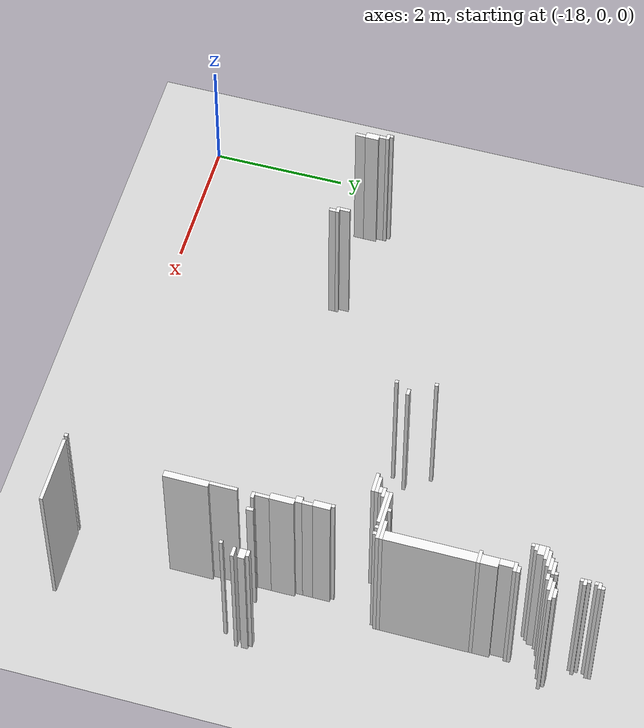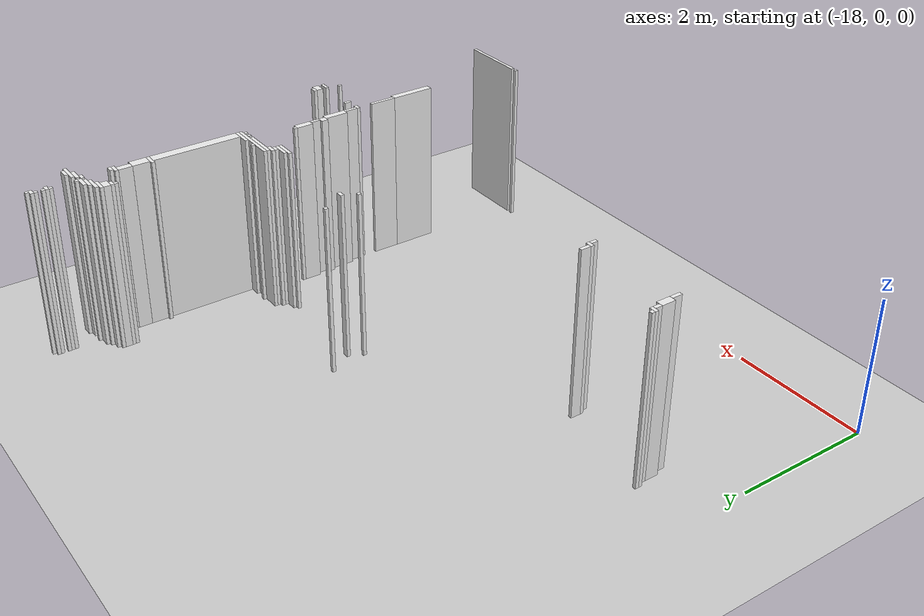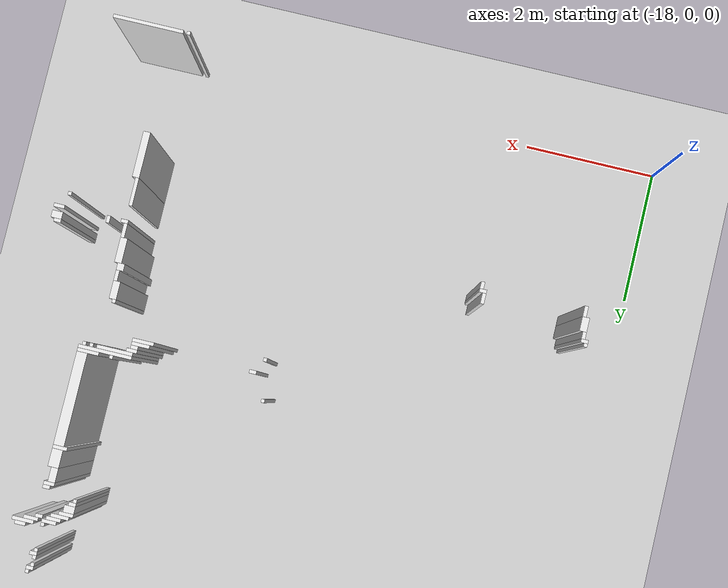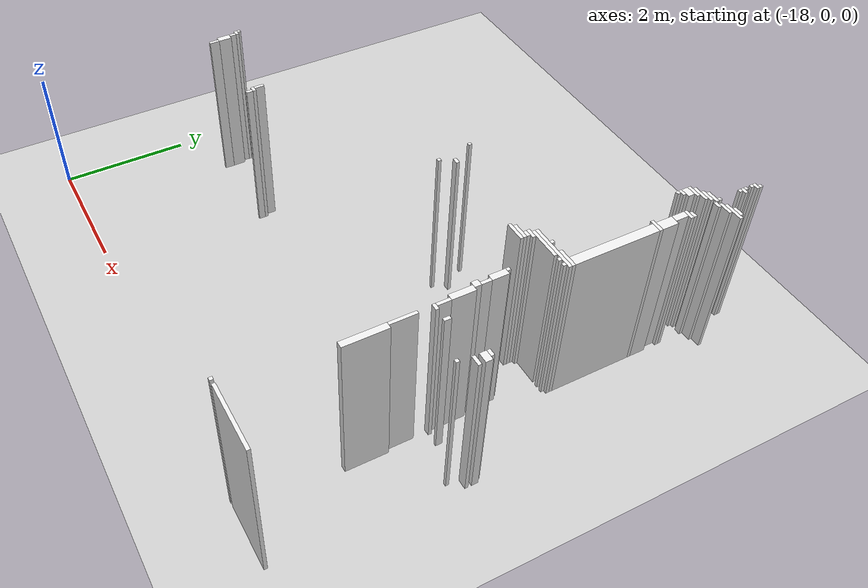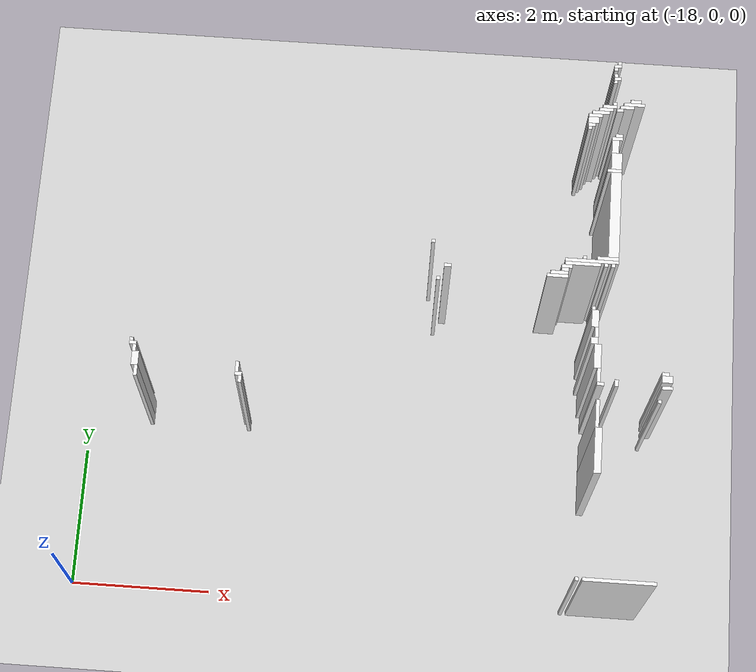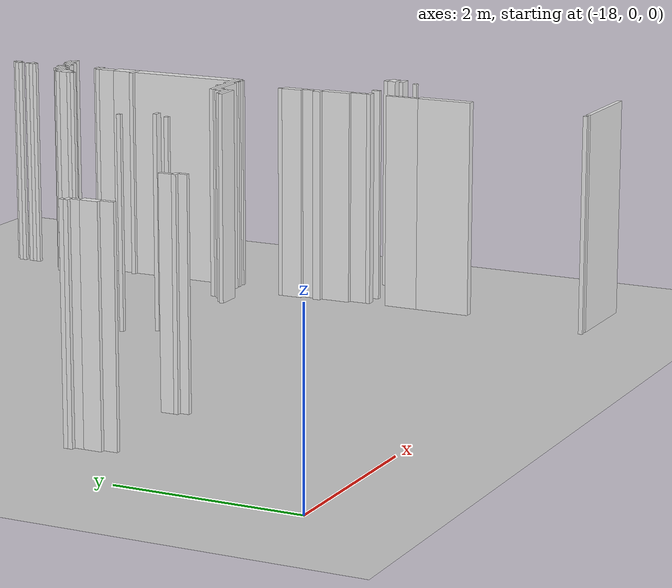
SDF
<sdf version="1.7">
 <world name="occupancy_map_world">
  <model name="ground_plane">
   <static>true</static>
   <link name="link">
    <collision name="collision">
     <geometry><plane><normal>0 0 1</normal><size>25.380000000000003 18.84</size></plane></geometry>
    </collision>
    <visual name="visual">
     <geometry><plane><normal>0 0 1</normal><size>25.380000000000003 18.84</size></plane></geometry>
     <material>
      <script><uri>file://media/materials/scripts/gazebo.material</uri><name>Gazebo/Grey</name></script>
     </material>
    </visual>
   </link>
  </model>
  <model name="wall_45">
   <static>true</static>
   <pose>-10.529 7.703 1.25 0 0 0.0</pose>
   <link name="link">
    <collision name="collision"><geometry><box><size>0.05 0.05 2.5</size></box></geometry></collision>
    <visual name="visual">
     <geometry><box><size>0.05 0.05 2.5</size></box></geometry>
     <material>
      <script><uri>file://media/materials/scripts/gazebo.material</uri><name>Gazebo/White</name></script>
     </material>
    </visual>
   </link>
  </model>
  <model name="wall_46">
   <static>true</static>
   <pose>-10.529 4.553 1.25 0 0 0.0</pose>
   <link name="link">
    <collision name="collision"><geometry><box><size>0.05 0.05 2.5</size></box></geometry></collision>
    <visual name="visual">
     <geometry><box><size>0.05 0.05 2.5</size></box></geometry>
     <material>
      <script><uri>file://media/materials/scripts/gazebo.material</uri><name>Gazebo/White</name></script>
     </material>
    </visual>
   </link>
  </model>
  <model name="wall_47">
   <static>true</static>
   <pose>-10.554000000000002 7.653 1.25 0 0 0.0</pose>
   <link name="link">
    <collision name="collision"><geometry><box><size>0.1 0.05 2.5</size></box></geometry></collision>
    <visual name="visual">
     <geometry><box><size>0.1 0.05 2.5</size></box></geometry>
     <material>
      <script><uri>file://media/materials/scripts/gazebo.material</uri><name>Gazebo/White</name></script>
     </material>
    </visual>
   </link>
  </model>
  <model name="wall_48">
   <static>true</static>
   <pose>-10.554000000000002 7.453 1.25 0 0 0.0</pose>
   <link name="link">
    <collision name="collision"><geometry><box><size>0.1 0.05 2.5</size></box></geometry></collision>
    <visual name="visual">
     <geometry><box><size>0.1 0.05 2.5</size></box></geometry>
     <material>
      <script><uri>file://media/materials/scripts/gazebo.material</uri><name>Gazebo/White</name></script>
     </material>
    </visual>
   </link>
  </model>
  <model name="wall_49">
   <static>true</static>
   <pose>-10.554000000000002 6.378000000000001 1.25 0 0 0.0</pose>
   <link name="link">
    <collision name="collision"><geometry><box><size>0.1 0.2 2.5</size></box></geometry></collision>
    <visual name="visual">
     <geometry><box><size>0.1 0.2 2.5</size></box></geometry>
     <material>
      <script><uri>file://media/materials/scripts/gazebo.material</uri><name>Gazebo/White</name></script>
     </material>
    </visual>
   </link>
  </model>
  <model name="wall_52">
   <static>true</static>
   <pose>-10.579 7.603000000000001 1.25 0 0 0.0</pose>
   <link name="link">
    <collision name="collision"><geometry><box><size>0.05 0.05 2.5</size></box></geometry></collision>
    <visual name="visual">
     <geometry><box><size>0.05 0.05 2.5</size></box></geometry>
     <material>
      <script><uri>file://media/materials/scripts/gazebo.material</uri><name>Gazebo/White</name></script>
     </material>
    </visual>
   </link>
  </model>
  <model name="wall_53">
   <static>true</static>
   <pose>-10.579 7.503000000000001 1.25 0 0 0.0</pose>
   <link name="link">
    <collision name="collision"><geometry><box><size>0.05 0.05 2.5</size></box></geometry></collision>
    <visual name="visual">
     <geometry><box><size>0.05 0.05 2.5</size></box></geometry>
     <material>
      <script><uri>file://media/materials/scripts/gazebo.material</uri><name>Gazebo/White</name></script>
     </material>
    </visual>
   </link>
  </model>
  <model name="wall_54">
   <static>true</static>
   <pose>-10.579 7.403 1.25 0 0 0.0</pose>
   <link name="link">
    <collision name="collision"><geometry><box><size>0.05 0.05 2.5</size></box></geometry></collision>
    <visual name="visual">
     <geometry><box><size>0.05 0.05 2.5</size></box></geometry>
     <material>
      <script><uri>file://media/materials/scripts/gazebo.material</uri><name>Gazebo/White</name></script>
     </material>
    </visual>
   </link>
  </model>
  <model name="wall_55">
   <static>true</static>
   <pose>-10.579 7.053 1.25 0 0 0.0</pose>
   <link name="link">
    <collision name="collision"><geometry><box><size>0.05 0.05 2.5</size></box></geometry></collision>
    <visual name="visual">
     <geometry><box><size>0.05 0.05 2.5</size></box></geometry>
     <material>
      <script><uri>file://media/materials/scripts/gazebo.material</uri><name>Gazebo/White</name></script>
     </material>
    </visual>
   </link>
  </model>
  <model name="wall_68">
   <static>true</static>
   <pose>-10.279000000000002 7.103000000000001 1.25 0 0 0.0</pose>
   <link name="link">
    <collision name="collision">
     <geometry><box><size>0.15000000000000002 0.05 2.5</size></box></geometry>
    </collision>
    <visual name="visual">
     <geometry><box><size>0.15000000000000002 0.05 2.5</size></box></geometry>
     <material>
      <script><uri>file://media/materials/scripts/gazebo.material</uri><name>Gazebo/White</name></script>
     </material>
    </visual>
   </link>
  </model>
  <model name="wall_70">
   <static>true</static>
   <pose>-10.304 7.053 1.25 0 0 0.0</pose>
   <link name="link">
    <collision name="collision">
     <geometry><box><size>0.30000000000000004 0.05 2.5</size></box></geometry>
    </collision>
    <visual name="visual">
     <geometry><box><size>0.30000000000000004 0.05 2.5</size></box></geometry>
     <material>
      <script><uri>file://media/materials/scripts/gazebo.material</uri><name>Gazebo/White</name></script>
     </material>
    </visual>
   </link>
  </model>
  <model name="wall_73">
   <static>true</static>
   <pose>-10.654 7.003000000000001 1.25 0 0 0.0</pose>
   <link name="link">
    <collision name="collision"><geometry><box><size>0.2 0.05 2.5</size></box></geometry></collision>
    <visual name="visual">
     <geometry><box><size>0.2 0.05 2.5</size></box></geometry>
     <material>
      <script><uri>file://media/materials/scripts/gazebo.material</uri><name>Gazebo/White</name></script>
     </material>
    </visual>
   </link>
  </model>
  <model name="wall_74">
   <static>true</static>
   <pose>-10.404 7.003000000000001 1.25 0 0 0.0</pose>
   <link name="link">
    <collision name="collision"><geometry><box><size>0.2 0.05 2.5</size></box></geometry></collision>
    <visual name="visual">
     <geometry><box><size>0.2 0.05 2.5</size></box></geometry>
     <material>
      <script><uri>file://media/materials/scripts/gazebo.material</uri><name>Gazebo/White</name></script>
     </material>
    </visual>
   </link>
  </model>
  <model name="wall_77">
   <static>true</static>
   <pose>-10.704 6.953 1.25 0 0 0.0</pose>
   <link name="link">
    <collision name="collision"><geometry><box><size>0.2 0.05 2.5</size></box></geometry></collision>
    <visual name="visual">
     <geometry><box><size>0.2 0.05 2.5</size></box></geometry>
     <material>
      <script><uri>file://media/materials/scripts/gazebo.material</uri><name>Gazebo/White</name></script>
     </material>
    </visual>
   </link>
  </model>
  <model name="wall_78">
   <static>true</static>
   <pose>-10.504000000000001 6.953 1.25 0 0 0.0</pose>
   <link name="link">
    <collision name="collision"><geometry><box><size>0.1 0.05 2.5</size></box></geometry></collision>
    <visual name="visual">
     <geometry><box><size>0.1 0.05 2.5</size></box></geometry>
     <material>
      <script><uri>file://media/materials/scripts/gazebo.material</uri><name>Gazebo/White</name></script>
     </material>
    </visual>
   </link>
  </model>
  <model name="wall_79">
   <static>true</static>
   <pose>-10.504000000000001 6.553 1.25 0 0 0.0</pose>
   <link name="link">
    <collision name="collision"><geometry><box><size>0.1 0.05 2.5</size></box></geometry></collision>
    <visual name="visual">
     <geometry><box><size>0.1 0.05 2.5</size></box></geometry>
     <material>
      <script><uri>file://media/materials/scripts/gazebo.material</uri><name>Gazebo/White</name></script>
     </material>
    </visual>
   </link>
  </model>
  <model name="wall_84">
   <static>true</static>
   <pose>-10.779 6.903 1.25 0 0 0.0</pose>
   <link name="link">
    <collision name="collision"><geometry><box><size>0.25 0.05 2.5</size></box></geometry></collision>
    <visual name="visual">
     <geometry><box><size>0.25 0.05 2.5</size></box></geometry>
     <material>
      <script><uri>file://media/materials/scripts/gazebo.material</uri><name>Gazebo/White</name></script>
     </material>
    </visual>
   </link>
  </model>
  <model name="wall_89">
   <static>true</static>
   <pose>-10.854000000000001 6.853000000000001 1.25 0 0 0.0</pose>
   <link name="link">
    <collision name="collision"><geometry><box><size>0.2 0.05 2.5</size></box></geometry></collision>
    <visual name="visual">
     <geometry><box><size>0.2 0.05 2.5</size></box></geometry>
     <material>
      <script><uri>file://media/materials/scripts/gazebo.material</uri><name>Gazebo/White</name></script>
     </material>
    </visual>
   </link>
  </model>
  <model name="wall_95">
   <static>true</static>
   <pose>-10.879000000000001 6.778 1.25 0 0 0.0</pose>
   <link name="link">
    <collision name="collision">
     <geometry><box><size>0.15000000000000002 0.1 2.5</size></box></geometry>
    </collision>
    <visual name="visual">
     <geometry><box><size>0.15000000000000002 0.1 2.5</size></box></geometry>
     <material>
      <script><uri>file://media/materials/scripts/gazebo.material</uri><name>Gazebo/White</name></script>
     </material>
    </visual>
   </link>
  </model>
  <model name="wall_104">
   <static>true</static>
   <pose>-10.904 6.703 1.25 0 0 0.0</pose>
   <link name="link">
    <collision name="collision"><geometry><box><size>0.1 0.05 2.5</size></box></geometry></collision>
    <visual name="visual">
     <geometry><box><size>0.1 0.05 2.5</size></box></geometry>
     <material>
      <script><uri>file://media/materials/scripts/gazebo.material</uri><name>Gazebo/White</name></script>
     </material>
    </visual>
   </link>
  </model>
  <model name="wall_105">
   <static>true</static>
   <pose>-10.929000000000002 6.653 1.25 0 0 0.0</pose>
   <link name="link">
    <collision name="collision"><geometry><box><size>0.05 0.05 2.5</size></box></geometry></collision>
    <visual name="visual">
     <geometry><box><size>0.05 0.05 2.5</size></box></geometry>
     <material>
      <script><uri>file://media/materials/scripts/gazebo.material</uri><name>Gazebo/White</name></script>
     </material>
    </visual>
   </link>
  </model>
  <model name="wall_106">
   <static>true</static>
   <pose>-10.929000000000002 4.653 1.25 0 0 0.0</pose>
   <link name="link">
    <collision name="collision"><geometry><box><size>0.05 0.05 2.5</size></box></geometry></collision>
    <visual name="visual">
     <geometry><box><size>0.05 0.05 2.5</size></box></geometry>
     <material>
      <script><uri>file://media/materials/scripts/gazebo.material</uri><name>Gazebo/White</name></script>
     </material>
    </visual>
   </link>
  </model>
  <model name="wall_112">
   <static>true</static>
   <pose>-10.529 6.503000000000001 1.25 0 0 0.0</pose>
   <link name="link">
    <collision name="collision">
     <geometry><box><size>0.15000000000000002 0.05 2.5</size></box></geometry>
    </collision>
    <visual name="visual">
     <geometry><box><size>0.15000000000000002 0.05 2.5</size></box></geometry>
     <material>
      <script><uri>file://media/materials/scripts/gazebo.material</uri><name>Gazebo/White</name></script>
     </material>
    </visual>
   </link>
  </model>
  <model name="wall_113">
   <static>true</static>
   <pose>-10.529 6.153 1.25 0 0 0.0</pose>
   <link name="link">
    <collision name="collision">
     <geometry><box><size>0.15000000000000002 0.25 2.5</size></box></geometry>
    </collision>
    <visual name="visual">
     <geometry><box><size>0.15000000000000002 0.25 2.5</size></box></geometry>
     <material>
      <script><uri>file://media/materials/scripts/gazebo.material</uri><name>Gazebo/White</name></script>
     </material>
    </visual>
   </link>
  </model>
  <model name="wall_114">
   <static>true</static>
   <pose>-10.529 5.328 1.25 0 0 0.0</pose>
   <link name="link">
    <collision name="collision">
     <geometry><box><size>0.15000000000000002 1.3 2.5</size></box></geometry>
    </collision>
    <visual name="visual">
     <geometry><box><size>0.15000000000000002 1.3 2.5</size></box></geometry>
     <material>
      <script><uri>file://media/materials/scripts/gazebo.material</uri><name>Gazebo/White</name></script>
     </material>
    </visual>
   </link>
  </model>
  <model name="wall_140">
   <static>true</static>
   <pose>-10.554000000000002 6.003000000000001 1.25 0 0 0.0</pose>
   <link name="link">
    <collision name="collision"><geometry><box><size>0.2 0.05 2.5</size></box></geometry></collision>
    <visual name="visual">
     <geometry><box><size>0.2 0.05 2.5</size></box></geometry>
     <material>
      <script><uri>file://media/materials/scripts/gazebo.material</uri><name>Gazebo/White</name></script>
     </material>
    </visual>
   </link>
  </model>
  <model name="wall_193">
   <static>true</static>
   <pose>-13.079 4.752999999999999 1.25 0 0 0.0</pose>
   <link name="link">
    <collision name="collision"><geometry><box><size>0.05 0.05 2.5</size></box></geometry></collision>
    <visual name="visual">
     <geometry><box><size>0.05 0.05 2.5</size></box></geometry>
     <material>
      <script><uri>file://media/materials/scripts/gazebo.material</uri><name>Gazebo/White</name></script>
     </material>
    </visual>
   </link>
  </model>
  <model name="wall_195">
   <static>true</static>
   <pose>-10.604000000000001 4.653 1.25 0 0 0.0</pose>
   <link name="link">
    <collision name="collision">
     <geometry><box><size>0.30000000000000004 0.05 2.5</size></box></geometry>
    </collision>
    <visual name="visual">
     <geometry><box><size>0.30000000000000004 0.05 2.5</size></box></geometry>
     <material>
      <script><uri>file://media/materials/scripts/gazebo.material</uri><name>Gazebo/White</name></script>
     </material>
    </visual>
   </link>
  </model>
  <model name="wall_196">
   <static>true</static>
   <pose>-10.829 4.603000000000001 1.25 0 0 0.0</pose>
   <link name="link">
    <collision name="collision"><geometry><box><size>0.75 0.05 2.5</size></box></geometry></collision>
    <visual name="visual">
     <geometry><box><size>0.75 0.05 2.5</size></box></geometry>
     <material>
      <script><uri>file://media/materials/scripts/gazebo.material</uri><name>Gazebo/White</name></script>
     </material>
    </visual>
   </link>
  </model>
  <model name="wall_200">
   <static>true</static>
   <pose>-10.954 4.553 1.25 0 0 0.0</pose>
   <link name="link">
    <collision name="collision"><geometry><box><size>0.5 0.05 2.5</size></box></geometry></collision>
    <visual name="visual">
     <geometry><box><size>0.5 0.05 2.5</size></box></geometry>
     <material>
      <script><uri>file://media/materials/scripts/gazebo.material</uri><name>Gazebo/White</name></script>
     </material>
    </visual>
   </link>
  </model>
  <model name="wall_201">
   <static>true</static>
   <pose>-10.629000000000001 4.553 1.25 0 0 0.0</pose>
   <link name="link">
    <collision name="collision"><geometry><box><size>0.05 0.05 2.5</size></box></geometry></collision>
    <visual name="visual">
     <geometry><box><size>0.05 0.05 2.5</size></box></geometry>
     <material>
      <script><uri>file://media/materials/scripts/gazebo.material</uri><name>Gazebo/White</name></script>
     </material>
    </visual>
   </link>
  </model>
  <model name="wall_203">
   <static>true</static>
   <pose>-11.179000000000002 4.502999999999999 1.25 0 0 0.0</pose>
   <link name="link">
    <collision name="collision">
     <geometry><box><size>0.15000000000000002 0.05 2.5</size></box></geometry>
    </collision>
    <visual name="visual">
     <geometry><box><size>0.15000000000000002 0.05 2.5</size></box></geometry>
     <material>
      <script><uri>file://media/materials/scripts/gazebo.material</uri><name>Gazebo/White</name></script>
     </material>
    </visual>
   </link>
  </model>
  <model name="wall_205">
   <static>true</static>
   <pose>-11.204 4.453 1.25 0 0 0.0</pose>
   <link name="link">
    <collision name="collision"><geometry><box><size>0.1 0.05 2.5</size></box></geometry></collision>
    <visual name="visual">
     <geometry><box><size>0.1 0.05 2.5</size></box></geometry>
     <material>
      <script><uri>file://media/materials/scripts/gazebo.material</uri><name>Gazebo/White</name></script>
     </material>
    </visual>
   </link>
  </model>
  <model name="wall_209">
   <static>true</static>
   <pose>-12.854000000000001 4.403 1.25 0 0 0.0</pose>
   <link name="link">
    <collision name="collision"><geometry><box><size>0.1 0.05 2.5</size></box></geometry></collision>
    <visual name="visual">
     <geometry><box><size>0.1 0.05 2.5</size></box></geometry>
     <material>
      <script><uri>file://media/materials/scripts/gazebo.material</uri><name>Gazebo/White</name></script>
     </material>
    </visual>
   </link>
  </model>
  <model name="wall_210">
   <static>true</static>
   <pose>-11.279 4.403 1.25 0 0 0.0</pose>
   <link name="link">
    <collision name="collision"><geometry><box><size>0.25 0.05 2.5</size></box></geometry></collision>
    <visual name="visual">
     <geometry><box><size>0.25 0.05 2.5</size></box></geometry>
     <material>
      <script><uri>file://media/materials/scripts/gazebo.material</uri><name>Gazebo/White</name></script>
     </material>
    </visual>
   </link>
  </model>
  <model name="wall_217">
   <static>true</static>
   <pose>-11.304000000000002 4.353000000000001 1.25 0 0 0.0</pose>
   <link name="link">
    <collision name="collision">
     <geometry><box><size>0.30000000000000004 0.05 2.5</size></box></geometry>
    </collision>
    <visual name="visual">
     <geometry><box><size>0.30000000000000004 0.05 2.5</size></box></geometry>
     <material>
      <script><uri>file://media/materials/scripts/gazebo.material</uri><name>Gazebo/White</name></script>
     </material>
    </visual>
   </link>
  </model>
  <model name="wall_221">
   <static>true</static>
   <pose>-12.979000000000001 4.203 1.25 0 0 0.0</pose>
   <link name="link">
    <collision name="collision"><geometry><box><size>0.05 0.05 2.5</size></box></geometry></collision>
    <visual name="visual">
     <geometry><box><size>0.05 0.05 2.5</size></box></geometry>
     <material>
      <script><uri>file://media/materials/scripts/gazebo.material</uri><name>Gazebo/White</name></script>
     </material>
    </visual>
   </link>
  </model>
  <model name="wall_230">
   <static>true</static>
   <pose>-10.779 3.9029999999999996 1.25 0 0 0.0</pose>
   <link name="link">
    <collision name="collision"><geometry><box><size>0.05 0.05 2.5</size></box></geometry></collision>
    <visual name="visual">
     <geometry><box><size>0.05 0.05 2.5</size></box></geometry>
     <material>
      <script><uri>file://media/materials/scripts/gazebo.material</uri><name>Gazebo/White</name></script>
     </material>
    </visual>
   </link>
  </model>
  <model name="wall_231">
   <static>true</static>
   <pose>-10.754000000000001 3.7529999999999992 1.25 0 0 0.0</pose>
   <link name="link">
    <collision name="collision"><geometry><box><size>0.1 0.25 2.5</size></box></geometry></collision>
    <visual name="visual">
     <geometry><box><size>0.1 0.25 2.5</size></box></geometry>
     <material>
      <script><uri>file://media/materials/scripts/gazebo.material</uri><name>Gazebo/White</name></script>
     </material>
    </visual>
   </link>
  </model>
  <model name="wall_232">
   <static>true</static>
   <pose>-10.754000000000001 3.428 1.25 0 0 0.0</pose>
   <link name="link">
    <collision name="collision"><geometry><box><size>0.1 0.1 2.5</size></box></geometry></collision>
    <visual name="visual">
     <geometry><box><size>0.1 0.1 2.5</size></box></geometry>
     <material>
      <script><uri>file://media/materials/scripts/gazebo.material</uri><name>Gazebo/White</name></script>
     </material>
    </visual>
   </link>
  </model>
  <model name="wall_239">
   <static>true</static>
   <pose>-10.729000000000001 3.553 1.25 0 0 0.0</pose>
   <link name="link">
    <collision name="collision">
     <geometry><box><size>0.05 0.15000000000000002 2.5</size></box></geometry>
    </collision>
    <visual name="visual">
     <geometry><box><size>0.05 0.15000000000000002 2.5</size></box></geometry>
     <material>
      <script><uri>file://media/materials/scripts/gazebo.material</uri><name>Gazebo/White</name></script>
     </material>
    </visual>
   </link>
  </model>
  <model name="wall_241">
   <static>true</static>
   <pose>-10.704 3.2030000000000003 1.25 0 0 0.0</pose>
   <link name="link">
    <collision name="collision">
     <geometry><box><size>0.1 0.35000000000000003 2.5</size></box></geometry>
    </collision>
    <visual name="visual">
     <geometry><box><size>0.1 0.35000000000000003 2.5</size></box></geometry>
     <material>
      <script><uri>file://media/materials/scripts/gazebo.material</uri><name>Gazebo/White</name></script>
     </material>
    </visual>
   </link>
  </model>
  <model name="wall_247">
   <static>true</static>
   <pose>-17.179000000000002 3.003 1.25 0 0 0.0</pose>
   <link name="link">
    <collision name="collision"><geometry><box><size>0.05 0.05 2.5</size></box></geometry></collision>
    <visual name="visual">
     <geometry><box><size>0.05 0.05 2.5</size></box></geometry>
     <material>
      <script><uri>file://media/materials/scripts/gazebo.material</uri><name>Gazebo/White</name></script>
     </material>
    </visual>
   </link>
  </model>
  <model name="wall_248">
   <static>true</static>
   <pose>-10.679000000000002 2.928 1.25 0 0 0.0</pose>
   <link name="link">
    <collision name="collision"><geometry><box><size>0.05 0.2 2.5</size></box></geometry></collision>
    <visual name="visual">
     <geometry><box><size>0.05 0.2 2.5</size></box></geometry>
     <material>
      <script><uri>file://media/materials/scripts/gazebo.material</uri><name>Gazebo/White</name></script>
     </material>
    </visual>
   </link>
  </model>
  <model name="wall_249">
   <static>true</static>
   <pose>-10.679000000000002 2.378 1.25 0 0 0.0</pose>
   <link name="link">
    <collision name="collision"><geometry><box><size>0.05 0.4 2.5</size></box></geometry></collision>
    <visual name="visual">
     <geometry><box><size>0.05 0.4 2.5</size></box></geometry>
     <material>
      <script><uri>file://media/materials/scripts/gazebo.material</uri><name>Gazebo/White</name></script>
     </material>
    </visual>
   </link>
  </model>
  <model name="wall_250">
   <static>true</static>
   <pose>-9.754000000000001 3.003 1.25 0 0 0.0</pose>
   <link name="link">
    <collision name="collision"><geometry><box><size>0.1 0.05 2.5</size></box></geometry></collision>
    <visual name="visual">
     <geometry><box><size>0.1 0.05 2.5</size></box></geometry>
     <material>
      <script><uri>file://media/materials/scripts/gazebo.material</uri><name>Gazebo/White</name></script>
     </material>
    </visual>
   </link>
  </model>
  <model name="wall_251">
   <static>true</static>
   <pose>-17.154 2.9530000000000003 1.25 0 0 0.0</pose>
   <link name="link">
    <collision name="collision"><geometry><box><size>0.1 0.05 2.5</size></box></geometry></collision>
    <visual name="visual">
     <geometry><box><size>0.1 0.05 2.5</size></box></geometry>
     <material>
      <script><uri>file://media/materials/scripts/gazebo.material</uri><name>Gazebo/White</name></script>
     </material>
    </visual>
   </link>
  </model>
  <model name="wall_252">
   <static>true</static>
   <pose>-9.729000000000001 2.928 1.25 0 0 0.0</pose>
   <link name="link">
    <collision name="collision">
     <geometry><box><size>0.15000000000000002 0.1 2.5</size></box></geometry>
    </collision>
    <visual name="visual">
     <geometry><box><size>0.15000000000000002 0.1 2.5</size></box></geometry>
     <material>
      <script><uri>file://media/materials/scripts/gazebo.material</uri><name>Gazebo/White</name></script>
     </material>
    </visual>
   </link>
  </model>
  <model name="wall_253">
   <static>true</static>
   <pose>-9.729000000000001 2.803 1.25 0 0 0.0</pose>
   <link name="link">
    <collision name="collision">
     <geometry><box><size>0.15000000000000002 0.05 2.5</size></box></geometry>
    </collision>
    <visual name="visual">
     <geometry><box><size>0.15000000000000002 0.05 2.5</size></box></geometry>
     <material>
      <script><uri>file://media/materials/scripts/gazebo.material</uri><name>Gazebo/White</name></script>
     </material>
    </visual>
   </link>
  </model>
  <model name="wall_255">
   <static>true</static>
   <pose>-17.129 2.878 1.25 0 0 0.0</pose>
   <link name="link">
    <collision name="collision"><geometry><box><size>0.05 0.1 2.5</size></box></geometry></collision>
    <visual name="visual">
     <geometry><box><size>0.05 0.1 2.5</size></box></geometry>
     <material>
      <script><uri>file://media/materials/scripts/gazebo.material</uri><name>Gazebo/White</name></script>
     </material>
    </visual>
   </link>
  </model>
  <model name="wall_257">
   <static>true</static>
   <pose>-10.429000000000002 2.8280000000000003 1.25 0 0 0.0</pose>
   <link name="link">
    <collision name="collision"><geometry><box><size>0.05 0.1 2.5</size></box></geometry></collision>
    <visual name="visual">
     <geometry><box><size>0.05 0.1 2.5</size></box></geometry>
     <material>
      <script><uri>file://media/materials/scripts/gazebo.material</uri><name>Gazebo/White</name></script>
     </material>
    </visual>
   </link>
  </model>
  <model name="wall_261">
   <static>true</static>
   <pose>-17.104000000000003 2.7279999999999998 1.25 0 0 0.0</pose>
   <link name="link">
    <collision name="collision"><geometry><box><size>0.1 0.2 2.5</size></box></geometry></collision>
    <visual name="visual">
     <geometry><box><size>0.1 0.2 2.5</size></box></geometry>
     <material>
      <script><uri>file://media/materials/scripts/gazebo.material</uri><name>Gazebo/White</name></script>
     </material>
    </visual>
   </link>
  </model>
  <model name="wall_262">
   <static>true</static>
   <pose>-10.654 2.803 1.25 0 0 0.0</pose>
   <link name="link">
    <collision name="collision"><geometry><box><size>0.1 0.05 2.5</size></box></geometry></collision>
    <visual name="visual">
     <geometry><box><size>0.1 0.05 2.5</size></box></geometry>
     <material>
      <script><uri>file://media/materials/scripts/gazebo.material</uri><name>Gazebo/White</name></script>
     </material>
    </visual>
   </link>
  </model>
  <model name="wall_263">
   <static>true</static>
   <pose>-10.654 1.8529999999999998 1.25 0 0 0.0</pose>
   <link name="link">
    <collision name="collision"><geometry><box><size>0.1 0.65 2.5</size></box></geometry></collision>
    <visual name="visual">
     <geometry><box><size>0.1 0.65 2.5</size></box></geometry>
     <material>
      <script><uri>file://media/materials/scripts/gazebo.material</uri><name>Gazebo/White</name></script>
     </material>
    </visual>
   </link>
  </model>
  <model name="wall_267">
   <static>true</static>
   <pose>-15.679000000000002 2.7030000000000003 1.25 0 0 0.0</pose>
   <link name="link">
    <collision name="collision">
     <geometry><box><size>0.05 0.15000000000000002 2.5</size></box></geometry>
    </collision>
    <visual name="visual">
     <geometry><box><size>0.05 0.15000000000000002 2.5</size></box></geometry>
     <material>
      <script><uri>file://media/materials/scripts/gazebo.material</uri><name>Gazebo/White</name></script>
     </material>
    </visual>
   </link>
  </model>
  <model name="wall_283">
   <static>true</static>
   <pose>-17.079 2.553 1.25 0 0 0.0</pose>
   <link name="link">
    <collision name="collision">
     <geometry><box><size>0.05 0.15000000000000002 2.5</size></box></geometry>
    </collision>
    <visual name="visual">
     <geometry><box><size>0.05 0.15000000000000002 2.5</size></box></geometry>
     <material>
      <script><uri>file://media/materials/scripts/gazebo.material</uri><name>Gazebo/White</name></script>
     </material>
    </visual>
   </link>
  </model>
  <model name="wall_284">
   <static>true</static>
   <pose>-15.654000000000002 2.6029999999999998 1.25 0 0 0.0</pose>
   <link name="link">
    <collision name="collision"><geometry><box><size>0.1 0.05 2.5</size></box></geometry></collision>
    <visual name="visual">
     <geometry><box><size>0.1 0.05 2.5</size></box></geometry>
     <material>
      <script><uri>file://media/materials/scripts/gazebo.material</uri><name>Gazebo/White</name></script>
     </material>
    </visual>
   </link>
  </model>
  <model name="wall_285">
   <static>true</static>
   <pose>-9.829 2.6029999999999998 1.25 0 0 0.0</pose>
   <link name="link">
    <collision name="collision"><geometry><box><size>0.05 0.05 2.5</size></box></geometry></collision>
    <visual name="visual">
     <geometry><box><size>0.05 0.05 2.5</size></box></geometry>
     <material>
      <script><uri>file://media/materials/scripts/gazebo.material</uri><name>Gazebo/White</name></script>
     </material>
    </visual>
   </link>
  </model>
  <model name="wall_290">
   <static>true</static>
   <pose>-15.629000000000001 2.5279999999999996 1.25 0 0 0.0</pose>
   <link name="link">
    <collision name="collision"><geometry><box><size>0.05 0.1 2.5</size></box></geometry></collision>
    <visual name="visual">
     <geometry><box><size>0.05 0.1 2.5</size></box></geometry>
     <material>
      <script><uri>file://media/materials/scripts/gazebo.material</uri><name>Gazebo/White</name></script>
     </material>
    </visual>
   </link>
  </model>
  <model name="wall_340">
   <static>true</static>
   <pose>-10.879000000000001 0.052999999999999936 1.25 0 0 0.0</pose>
   <link name="link">
    <collision name="collision"><geometry><box><size>0.05 0.05 2.5</size></box></geometry></collision>
    <visual name="visual">
     <geometry><box><size>0.05 0.05 2.5</size></box></geometry>
     <material>
      <script><uri>file://media/materials/scripts/gazebo.material</uri><name>Gazebo/White</name></script>
     </material>
    </visual>
   </link>
  </model>
  <model name="wall_341">
   <static>true</static>
   <pose>-10.304 0.052999999999999936 1.25 0 0 0.0</pose>
   <link name="link">
    <collision name="collision"><geometry><box><size>1.0 0.05 2.5</size></box></geometry></collision>
    <visual name="visual">
     <geometry><box><size>1.0 0.05 2.5</size></box></geometry>
     <material>
      <script><uri>file://media/materials/scripts/gazebo.material</uri><name>Gazebo/White</name></script>
     </material>
    </visual>
   </link>
  </model>
  <model name="wall_411">
   <static>true</static>
   <pose>-17.179000000000002 3.003 1.25 0 0 0.0</pose>
   <link name="link">
    <collision name="collision"><geometry><box><size>0.05 0.05 2.5</size></box></geometry></collision>
    <visual name="visual">
     <geometry><box><size>0.05 0.05 2.5</size></box></geometry>
     <material>
      <script><uri>file://media/materials/scripts/gazebo.material</uri><name>Gazebo/White</name></script>
     </material>
    </visual>
   </link>
  </model>
  <model name="wall_412">
   <static>true</static>
   <pose>-17.129 2.878 1.25 0 0 0.0</pose>
   <link name="link">
    <collision name="collision"><geometry><box><size>0.05 0.1 2.5</size></box></geometry></collision>
    <visual name="visual">
     <geometry><box><size>0.05 0.1 2.5</size></box></geometry>
     <material>
      <script><uri>file://media/materials/scripts/gazebo.material</uri><name>Gazebo/White</name></script>
     </material>
    </visual>
   </link>
  </model>
  <model name="wall_413">
   <static>true</static>
   <pose>-17.079 2.553 1.25 0 0 0.0</pose>
   <link name="link">
    <collision name="collision">
     <geometry><box><size>0.05 0.15000000000000002 2.5</size></box></geometry>
    </collision>
    <visual name="visual">
     <geometry><box><size>0.05 0.15000000000000002 2.5</size></box></geometry>
     <material>
      <script><uri>file://media/materials/scripts/gazebo.material</uri><name>Gazebo/White</name></script>
     </material>
    </visual>
   </link>
  </model>
  <model name="wall_414">
   <static>true</static>
   <pose>-15.679000000000002 2.7030000000000003 1.25 0 0 0.0</pose>
   <link name="link">
    <collision name="collision">
     <geometry><box><size>0.05 0.15000000000000002 2.5</size></box></geometry>
    </collision>
    <visual name="visual">
     <geometry><box><size>0.05 0.15000000000000002 2.5</size></box></geometry>
     <material>
      <script><uri>file://media/materials/scripts/gazebo.material</uri><name>Gazebo/White</name></script>
     </material>
    </visual>
   </link>
  </model>
  <model name="wall_415">
   <static>true</static>
   <pose>-15.629000000000001 2.5279999999999996 1.25 0 0 0.0</pose>
   <link name="link">
    <collision name="collision"><geometry><box><size>0.05 0.1 2.5</size></box></geometry></collision>
    <visual name="visual">
     <geometry><box><size>0.05 0.1 2.5</size></box></geometry>
     <material>
      <script><uri>file://media/materials/scripts/gazebo.material</uri><name>Gazebo/White</name></script>
     </material>
    </visual>
   </link>
  </model>
  <model name="wall_416">
   <static>true</static>
   <pose>-13.079 4.752999999999999 1.25 0 0 0.0</pose>
   <link name="link">
    <collision name="collision"><geometry><box><size>0.05 0.05 2.5</size></box></geometry></collision>
    <visual name="visual">
     <geometry><box><size>0.05 0.05 2.5</size></box></geometry>
     <material>
      <script><uri>file://media/materials/scripts/gazebo.material</uri><name>Gazebo/White</name></script>
     </material>
    </visual>
   </link>
  </model>
  <model name="wall_417">
   <static>true</static>
   <pose>-12.979000000000001 4.203 1.25 0 0 0.0</pose>
   <link name="link">
    <collision name="collision"><geometry><box><size>0.05 0.05 2.5</size></box></geometry></collision>
    <visual name="visual">
     <geometry><box><size>0.05 0.05 2.5</size></box></geometry>
     <material>
      <script><uri>file://media/materials/scripts/gazebo.material</uri><name>Gazebo/White</name></script>
     </material>
    </visual>
   </link>
  </model>
  <model name="wall_419">
   <static>true</static>
   <pose>-10.929000000000002 6.653 1.25 0 0 0.0</pose>
   <link name="link">
    <collision name="collision"><geometry><box><size>0.05 0.05 2.5</size></box></geometry></collision>
    <visual name="visual">
     <geometry><box><size>0.05 0.05 2.5</size></box></geometry>
     <material>
      <script><uri>file://media/materials/scripts/gazebo.material</uri><name>Gazebo/White</name></script>
     </material>
    </visual>
   </link>
  </model>
  <model name="wall_420">
   <static>true</static>
   <pose>-10.929000000000002 4.653 1.25 0 0 0.0</pose>
   <link name="link">
    <collision name="collision"><geometry><box><size>0.05 0.05 2.5</size></box></geometry></collision>
    <visual name="visual">
     <geometry><box><size>0.05 0.05 2.5</size></box></geometry>
     <material>
      <script><uri>file://media/materials/scripts/gazebo.material</uri><name>Gazebo/White</name></script>
     </material>
    </visual>
   </link>
  </model>
  <model name="wall_421">
   <static>true</static>
   <pose>-10.879000000000001 0.052999999999999936 1.25 0 0 0.0</pose>
   <link name="link">
    <collision name="collision"><geometry><box><size>0.05 0.05 2.5</size></box></geometry></collision>
    <visual name="visual">
     <geometry><box><size>0.05 0.05 2.5</size></box></geometry>
     <material>
      <script><uri>file://media/materials/scripts/gazebo.material</uri><name>Gazebo/White</name></script>
     </material>
    </visual>
   </link>
  </model>
  <model name="wall_422">
   <static>true</static>
   <pose>-10.779 3.9029999999999996 1.25 0 0 0.0</pose>
   <link name="link">
    <collision name="collision"><geometry><box><size>0.05 0.05 2.5</size></box></geometry></collision>
    <visual name="visual">
     <geometry><box><size>0.05 0.05 2.5</size></box></geometry>
     <material>
      <script><uri>file://media/materials/scripts/gazebo.material</uri><name>Gazebo/White</name></script>
     </material>
    </visual>
   </link>
  </model>
  <model name="wall_423">
   <static>true</static>
   <pose>-10.729000000000001 3.553 1.25 0 0 0.0</pose>
   <link name="link">
    <collision name="collision">
     <geometry><box><size>0.05 0.15000000000000002 2.5</size></box></geometry>
    </collision>
    <visual name="visual">
     <geometry><box><size>0.05 0.15000000000000002 2.5</size></box></geometry>
     <material>
      <script><uri>file://media/materials/scripts/gazebo.material</uri><name>Gazebo/White</name></script>
     </material>
    </visual>
   </link>
  </model>
  <model name="wall_424">
   <static>true</static>
   <pose>-10.679000000000002 2.928 1.25 0 0 0.0</pose>
   <link name="link">
    <collision name="collision"><geometry><box><size>0.05 0.2 2.5</size></box></geometry></collision>
    <visual name="visual">
     <geometry><box><size>0.05 0.2 2.5</size></box></geometry>
     <material>
      <script><uri>file://media/materials/scripts/gazebo.material</uri><name>Gazebo/White</name></script>
     </material>
    </visual>
   </link>
  </model>
  <model name="wall_425">
   <static>true</static>
   <pose>-10.679000000000002 2.378 1.25 0 0 0.0</pose>
   <link name="link">
    <collision name="collision"><geometry><box><size>0.05 0.4 2.5</size></box></geometry></collision>
    <visual name="visual">
     <geometry><box><size>0.05 0.4 2.5</size></box></geometry>
     <material>
      <script><uri>file://media/materials/scripts/gazebo.material</uri><name>Gazebo/White</name></script>
     </material>
    </visual>
   </link>
  </model>
  <model name="wall_426">
   <static>true</static>
   <pose>-10.629000000000001 4.553 1.25 0 0 0.0</pose>
   <link name="link">
    <collision name="collision"><geometry><box><size>0.05 0.05 2.5</size></box></geometry></collision>
    <visual name="visual">
     <geometry><box><size>0.05 0.05 2.5</size></box></geometry>
     <material>
      <script><uri>file://media/materials/scripts/gazebo.material</uri><name>Gazebo/White</name></script>
     </material>
    </visual>
   </link>
  </model>
  <model name="wall_427">
   <static>true</static>
   <pose>-10.529 4.553 1.25 0 0 0.0</pose>
   <link name="link">
    <collision name="collision"><geometry><box><size>0.05 0.05 2.5</size></box></geometry></collision>
    <visual name="visual">
     <geometry><box><size>0.05 0.05 2.5</size></box></geometry>
     <material>
      <script><uri>file://media/materials/scripts/gazebo.material</uri><name>Gazebo/White</name></script>
     </material>
    </visual>
   </link>
  </model>
  <model name="wall_428">
   <static>true</static>
   <pose>-10.579 7.603000000000001 1.25 0 0 0.0</pose>
   <link name="link">
    <collision name="collision"><geometry><box><size>0.05 0.05 2.5</size></box></geometry></collision>
    <visual name="visual">
     <geometry><box><size>0.05 0.05 2.5</size></box></geometry>
     <material>
      <script><uri>file://media/materials/scripts/gazebo.material</uri><name>Gazebo/White</name></script>
     </material>
    </visual>
   </link>
  </model>
  <model name="wall_429">
   <static>true</static>
   <pose>-10.579 7.503000000000001 1.25 0 0 0.0</pose>
   <link name="link">
    <collision name="collision"><geometry><box><size>0.05 0.05 2.5</size></box></geometry></collision>
    <visual name="visual">
     <geometry><box><size>0.05 0.05 2.5</size></box></geometry>
     <material>
      <script><uri>file://media/materials/scripts/gazebo.material</uri><name>Gazebo/White</name></script>
     </material>
    </visual>
   </link>
  </model>
  <model name="wall_430">
   <static>true</static>
   <pose>-10.579 7.403 1.25 0 0 0.0</pose>
   <link name="link">
    <collision name="collision"><geometry><box><size>0.05 0.05 2.5</size></box></geometry></collision>
    <visual name="visual">
     <geometry><box><size>0.05 0.05 2.5</size></box></geometry>
     <material>
      <script><uri>file://media/materials/scripts/gazebo.material</uri><name>Gazebo/White</name></script>
     </material>
    </visual>
   </link>
  </model>
  <model name="wall_431">
   <static>true</static>
   <pose>-10.579 7.053 1.25 0 0 0.0</pose>
   <link name="link">
    <collision name="collision"><geometry><box><size>0.05 0.05 2.5</size></box></geometry></collision>
    <visual name="visual">
     <geometry><box><size>0.05 0.05 2.5</size></box></geometry>
     <material>
      <script><uri>file://media/materials/scripts/gazebo.material</uri><name>Gazebo/White</name></script>
     </material>
    </visual>
   </link>
  </model>
  <model name="wall_433">
   <static>true</static>
   <pose>-10.529 7.703 1.25 0 0 0.0</pose>
   <link name="link">
    <collision name="collision"><geometry><box><size>0.05 0.05 2.5</size></box></geometry></collision>
    <visual name="visual">
     <geometry><box><size>0.05 0.05 2.5</size></box></geometry>
     <material>
      <script><uri>file://media/materials/scripts/gazebo.material</uri><name>Gazebo/White</name></script>
     </material>
    </visual>
   </link>
  </model>
  <model name="wall_434">
   <static>true</static>
   <pose>-10.429000000000002 2.8280000000000003 1.25 0 0 0.0</pose>
   <link name="link">
    <collision name="collision"><geometry><box><size>0.05 0.1 2.5</size></box></geometry></collision>
    <visual name="visual">
     <geometry><box><size>0.05 0.1 2.5</size></box></geometry>
     <material>
      <script><uri>file://media/materials/scripts/gazebo.material</uri><name>Gazebo/White</name></script>
     </material>
    </visual>
   </link>
  </model>
  <model name="wall_435">
   <static>true</static>
   <pose>-9.829 2.6029999999999998 1.25 0 0 0.0</pose>
   <link name="link">
    <collision name="collision"><geometry><box><size>0.05 0.05 2.5</size></box></geometry></collision>
    <visual name="visual">
     <geometry><box><size>0.05 0.05 2.5</size></box></geometry>
     <material>
      <script><uri>file://media/materials/scripts/gazebo.material</uri><name>Gazebo/White</name></script>
     </material>
    </visual>
   </link>
  </model>
 </world>
</sdf>
